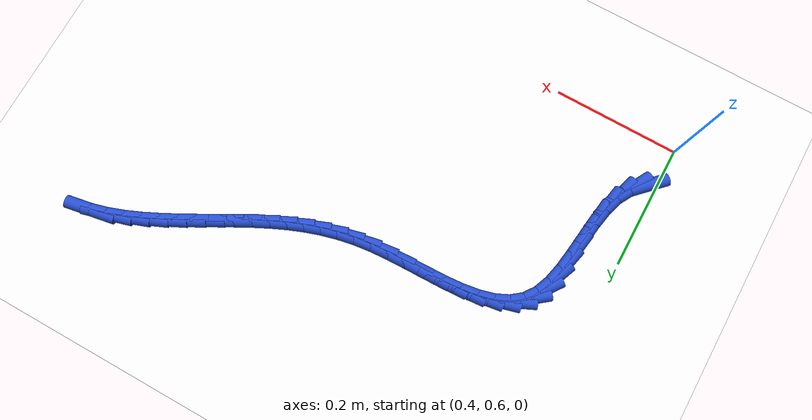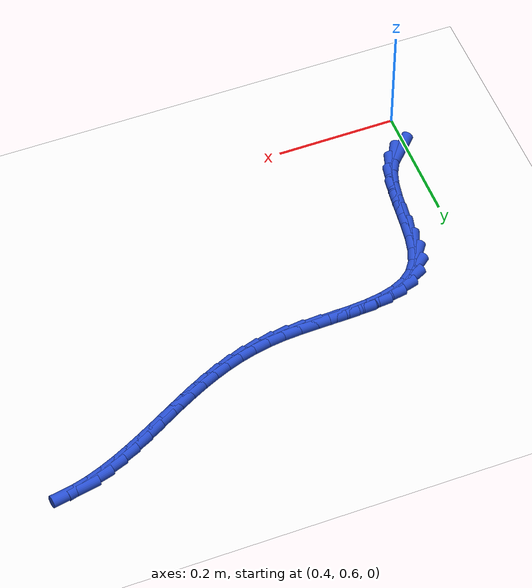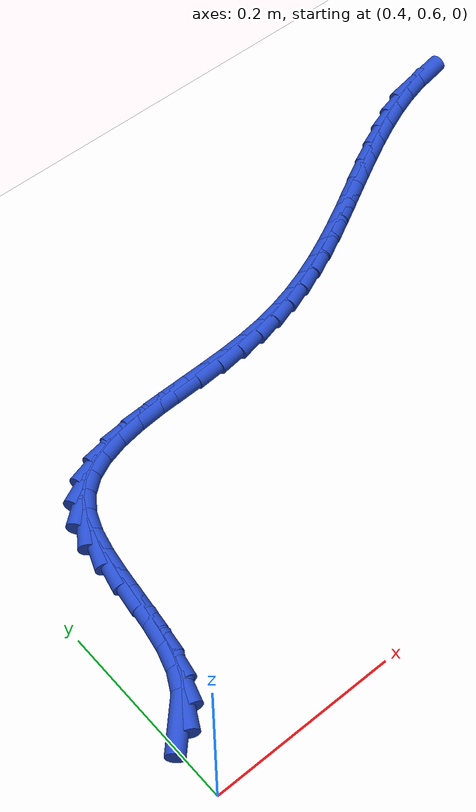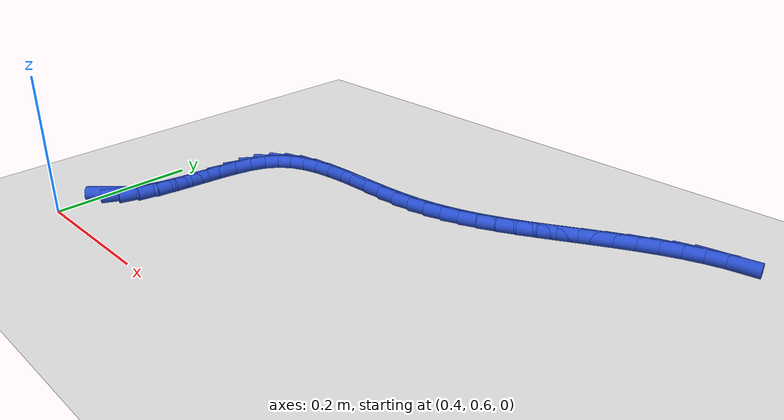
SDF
<sdf version="1.6">
 <world name="default">
  <model name="ground_plane">
   <static>1</static>
   <link name="link">
    <collision name="collision">
     <geometry><plane><normal>0 0 1</normal><size>100 100</size></plane></geometry>
     <surface><friction><ode><mu>100</mu><mu2>50</mu2></ode></friction></surface>
    </collision>
    <visual name="visual">
     <cast_shadows>0</cast_shadows>
     <geometry><plane><normal>0 0 1</normal><size>100 100</size></plane></geometry>
     <material>
      <script><uri>file://media/materials/scripts/gazebo.material</uri><name>Gazebo/WhiteGlow</name></script>
     </material>
    </visual>
   </link>
  </model>
  <model name="line">
   <link name="link_34">
    <pose>0.4199534080571775 0.6765338613883385 0.01 0 1.57 0.7923177625287058</pose>
    <collision name="collision">
     <geometry><cylinder><radius>0.01</radius><length>0.08</length></cylinder></geometry>
    </collision>
    <visual name="visual">
     <material>
      <script><name>Gazebo/Blue</name><uri>file://media/materials/scripts/gazebo.material</uri></script>
     </material>
     <geometry><cylinder><radius>0.01</radius><length>0.08</length></cylinder></geometry>
    </visual>
   </link>
   <link name="link_35">
    <pose>0.43574919612393337 0.6925497772069762 0.01 0 1.57 1.070897125102758</pose>
    <collision name="collision">
     <geometry><cylinder><radius>0.01</radius><length>0.08</length></cylinder></geometry>
    </collision>
    <visual name="visual">
     <material>
      <script><name>Gazebo/Blue</name><uri>file://media/materials/scripts/gazebo.material</uri></script>
     </material>
     <geometry><cylinder><radius>0.01</radius><length>0.08</length></cylinder></geometry>
    </visual>
   </link>
   <link name="link_36">
    <pose>0.4470509197334005 0.7132424007002299 0.01 0 1.57 1.2662341445706322</pose>
    <collision name="collision">
     <geometry><cylinder><radius>0.01</radius><length>0.08</length></cylinder></geometry>
    </collision>
    <visual name="visual">
     <material>
      <script><name>Gazebo/Blue</name><uri>file://media/materials/scripts/gazebo.material</uri></script>
     </material>
     <geometry><cylinder><radius>0.01</radius><length>0.08</length></cylinder></geometry>
    </visual>
   </link>
   <link name="link_37">
    <pose>0.45473546291214306 0.7376888354469547 0.01 0 1.57 1.3820660804485176</pose>
    <collision name="collision">
     <geometry><cylinder><radius>0.01</radius><length>0.08</length></cylinder></geometry>
    </collision>
    <visual name="visual">
     <material>
      <script><name>Gazebo/Blue</name><uri>file://media/materials/scripts/gazebo.material</uri></script>
     </material>
     <geometry><cylinder><radius>0.01</radius><length>0.08</length></cylinder></geometry>
    </visual>
   </link>
   <link name="link_38">
    <pose>0.45990038074570133 0.7647298029985087 0.01 0 1.57 1.44010782992766</pose>
    <collision name="collision">
     <geometry><cylinder><radius>0.01</radius><length>0.08</length></cylinder></geometry>
    </collision>
    <visual name="visual">
     <material>
      <script><name>Gazebo/Blue</name><uri>file://media/materials/scripts/gazebo.material</uri></script>
     </material>
     <geometry><cylinder><radius>0.01</radius><length>0.08</length></cylinder></geometry>
    </visual>
   </link>
   <link name="link_39">
    <pose>0.4636432283196159 0.7932060249062507 0.01 0 1.57 1.452462349332815</pose>
    <collision name="collision">
     <geometry><cylinder><radius>0.01</radius><length>0.08</length></cylinder></geometry>
    </collision>
    <visual name="visual">
     <material>
      <script><name>Gazebo/Blue</name><uri>file://media/materials/scripts/gazebo.material</uri></script>
     </material>
     <geometry><cylinder><radius>0.01</radius><length>0.08</length></cylinder></geometry>
    </visual>
   </link>
   <link name="link_40">
    <pose>0.4670615607194273 0.8219582227215383 0.01 0 1.57 1.4215190476510389</pose>
    <collision name="collision">
     <geometry><cylinder><radius>0.01</radius><length>0.08</length></cylinder></geometry>
    </collision>
    <visual name="visual">
     <material>
      <script><name>Gazebo/Blue</name><uri>file://media/materials/scripts/gazebo.material</uri></script>
     </material>
     <geometry><cylinder><radius>0.01</radius><length>0.08</length></cylinder></geometry>
    </visual>
   </link>
   <link name="link_41">
    <pose>0.4712529330306759 0.8498271179957307 0.01 0 1.57 1.3402491853394312</pose>
    <collision name="collision">
     <geometry><cylinder><radius>0.01</radius><length>0.08</length></cylinder></geometry>
    </collision>
    <visual name="visual">
     <material>
      <script><name>Gazebo/Blue</name><uri>file://media/materials/scripts/gazebo.material</uri></script>
     </material>
     <geometry><cylinder><radius>0.01</radius><length>0.08</length></cylinder></geometry>
    </visual>
   </link>
   <link name="link_42">
    <pose>0.477314900338902 0.8756534322801854 0.01 0 1.57 1.1910394605796708</pose>
    <collision name="collision">
     <geometry><cylinder><radius>0.01</radius><length>0.08</length></cylinder></geometry>
    </collision>
    <visual name="visual">
     <material>
      <script><name>Gazebo/Blue</name><uri>file://media/materials/scripts/gazebo.material</uri></script>
     </material>
     <geometry><cylinder><radius>0.01</radius><length>0.08</length></cylinder></geometry>
    </visual>
   </link>
   <link name="link_43">
    <pose>0.48634501772964633 0.8982778871262612 0.01 0 1.57 0.9505667504201235</pose>
    <collision name="collision">
     <geometry><cylinder><radius>0.01</radius><length>0.08</length></cylinder></geometry>
    </collision>
    <visual name="visual">
     <material>
      <script><name>Gazebo/Blue</name><uri>file://media/materials/scripts/gazebo.material</uri></script>
     </material>
     <geometry><cylinder><radius>0.01</radius><length>0.08</length></cylinder></geometry>
    </visual>
   </link>
   <link name="link_44">
    <pose>0.49941183105960485 0.9165721958688583 0.01 0 1.57 0.6671425733829582</pose>
    <collision name="collision">
     <geometry><cylinder><radius>0.01</radius><length>0.08</length></cylinder></geometry>
    </collision>
    <visual name="visual">
     <material>
      <script><name>Gazebo/Blue</name><uri>file://media/materials/scripts/gazebo.material</uri></script>
     </material>
     <geometry><cylinder><radius>0.01</radius><length>0.08</length></cylinder></geometry>
    </visual>
   </link>
   <link name="link_45">
    <pose>0.5167882400707897 0.9302580941683474 0.01 0 1.57 0.43248300576456994</pose>
    <collision name="collision">
     <geometry><cylinder><radius>0.01</radius><length>0.08</length></cylinder></geometry>
    </collision>
    <visual name="visual">
     <material>
      <script><name>Gazebo/Blue</name><uri>file://media/materials/scripts/gazebo.material</uri></script>
     </material>
     <geometry><cylinder><radius>0.01</radius><length>0.08</length></cylinder></geometry>
    </visual>
   </link>
   <link name="link_46">
    <pose>0.5378728412767588 0.9399913727250232 0.01 0 1.57 0.26234919527058076</pose>
    <collision name="collision">
     <geometry><cylinder><radius>0.01</radius><length>0.08</length></cylinder></geometry>
    </collision>
    <visual name="visual">
     <material>
      <script><name>Gazebo/Blue</name><uri>file://media/materials/scripts/gazebo.material</uri></script>
     </material>
     <geometry><cylinder><radius>0.01</radius><length>0.08</length></cylinder></geometry>
    </visual>
   </link>
   <link name="link_47">
    <pose>0.5620194466986577 0.9464756674026049 0.01 0 1.57 0.14721734777549855</pose>
    <collision name="collision">
     <geometry><cylinder><radius>0.01</radius><length>0.08</length></cylinder></geometry>
    </collision>
    <visual name="visual">
     <material>
      <script><name>Gazebo/Blue</name><uri>file://media/materials/scripts/gazebo.material</uri></script>
     </material>
     <geometry><cylinder><radius>0.01</radius><length>0.08</length></cylinder></geometry>
    </visual>
   </link>
   <link name="link_48">
    <pose>0.5885818683576327 0.9504146140648114 0.01 0 1.57 0.07388863454450137</pose>
    <collision name="collision">
     <geometry><cylinder><radius>0.01</radius><length>0.08</length></cylinder></geometry>
    </collision>
    <visual name="visual">
     <material>
      <script><name>Gazebo/Blue</name><uri>file://media/materials/scripts/gazebo.material</uri></script>
     </material>
     <geometry><cylinder><radius>0.01</radius><length>0.08</length></cylinder></geometry>
    </visual>
   </link>
   <link name="link_49">
    <pose>0.6169139182748291 0.9525118485753619 0.01 0 1.57 0.0325514672555364</pose>
    <collision name="collision">
     <geometry><cylinder><radius>0.01</radius><length>0.08</length></cylinder></geometry>
    </collision>
    <visual name="visual">
     <material>
      <script><name>Gazebo/Blue</name><uri>file://media/materials/scripts/gazebo.material</uri></script>
     </material>
     <geometry><cylinder><radius>0.01</radius><length>0.08</length></cylinder></geometry>
    </visual>
   </link>
   <link name="link_50">
    <pose>0.6463694084713933 0.9534710067979758 0.01 0 1.57 0.017528098544785757</pose>
    <collision name="collision">
     <geometry><cylinder><radius>0.01</radius><length>0.08</length></cylinder></geometry>
    </collision>
    <visual name="visual">
     <material>
      <script><name>Gazebo/Blue</name><uri>file://media/materials/scripts/gazebo.material</uri></script>
     </material>
     <geometry><cylinder><radius>0.01</radius><length>0.08</length></cylinder></geometry>
    </visual>
   </link>
   <link name="link_51">
    <pose>0.6763021509684706 0.953995724596372 0.01 0 1.57 0.026667456747574873</pose>
    <collision name="collision">
     <geometry><cylinder><radius>0.01</radius><length>0.08</length></cylinder></geometry>
    </collision>
    <visual name="visual">
     <material>
      <script><name>Gazebo/Blue</name><uri>file://media/materials/scripts/gazebo.material</uri></script>
     </material>
     <geometry><cylinder><radius>0.01</radius><length>0.08</length></cylinder></geometry>
    </visual>
   </link>
   <link name="link_52">
    <pose>0.7060659577872074 0.95478963783427 0.01 0 1.57 0.06095461739545288</pose>
    <collision name="collision">
     <geometry><cylinder><radius>0.01</radius><length>0.08</length></cylinder></geometry>
    </collision>
    <visual name="visual">
     <material>
      <script><name>Gazebo/Blue</name><uri>file://media/materials/scripts/gazebo.material</uri></script>
     </material>
     <geometry><cylinder><radius>0.01</radius><length>0.08</length></cylinder></geometry>
    </visual>
   </link>
   <link name="link_53">
    <pose>0.7350146409487491 0.9565563823753883 0.01 0 1.57 0.1211702622609101</pose>
    <collision name="collision">
     <geometry><cylinder><radius>0.01</radius><length>0.08</length></cylinder></geometry>
    </collision>
    <visual name="visual">
     <material>
      <script><name>Gazebo/Blue</name><uri>file://media/materials/scripts/gazebo.material</uri></script>
     </material>
     <geometry><cylinder><radius>0.01</radius><length>0.08</length></cylinder></geometry>
    </visual>
   </link>
   <link name="link_54">
    <pose>0.762596069342792 0.9599148841665189 0.01 0 1.57 0.1895481863788539</pose>
    <collision name="collision">
     <geometry><cylinder><radius>0.01</radius><length>0.08</length></cylinder></geometry>
    </collision>
    <visual name="visual">
     <material>
      <script><name>Gazebo/Blue</name><uri>file://media/materials/scripts/gazebo.material</uri></script>
     </material>
     <geometry><cylinder><radius>0.01</radius><length>0.08</length></cylinder></geometry>
    </visual>
   </link>
   <link name="link_55">
    <pose>0.7888493262262767 0.9649516070311946 0.01 0 1.57 0.2560312832328813</pose>
    <collision name="collision">
     <geometry><cylinder><radius>0.01</radius><length>0.08</length></cylinder></geometry>
    </collision>
    <visual name="visual">
     <material>
      <script><name>Gazebo/Blue</name><uri>file://media/materials/scripts/gazebo.material</uri></script>
     </material>
     <geometry><cylinder><radius>0.01</radius><length>0.08</length></cylinder></geometry>
    </visual>
   </link>
   <link name="link_56">
    <pose>0.8140426557753861 0.9715466268626329 0.01 0 1.57 0.3180168319167051</pose>
    <collision name="collision">
     <geometry><cylinder><radius>0.01</radius><length>0.08</length></cylinder></geometry>
    </collision>
    <visual name="visual">
     <material>
      <script><name>Gazebo/Blue</name><uri>file://media/materials/scripts/gazebo.material</uri></script>
     </material>
     <geometry><cylinder><radius>0.01</radius><length>0.08</length></cylinder></geometry>
    </visual>
   </link>
   <link name="link_57">
    <pose>0.8384448041861334 0.9795795674227095 0.01 0 1.57 0.3732146522069759</pose>
    <collision name="collision">
     <geometry><cylinder><radius>0.01</radius><length>0.08</length></cylinder></geometry>
    </collision>
    <visual name="visual">
     <material>
      <script><name>Gazebo/Blue</name><uri>file://media/materials/scripts/gazebo.material</uri></script>
     </material>
     <geometry><cylinder><radius>0.01</radius><length>0.08</length></cylinder></geometry>
    </visual>
   </link>
   <link name="link_58">
    <pose>0.8623245176545319 0.9889300524733017 0.01 0 1.57 0.41989128030626427</pose>
    <collision name="collision">
     <geometry><cylinder><radius>0.01</radius><length>0.08</length></cylinder></geometry>
    </collision>
    <visual name="visual">
     <material>
      <script><name>Gazebo/Blue</name><uri>file://media/materials/scripts/gazebo.material</uri></script>
     </material>
     <geometry><cylinder><radius>0.01</radius><length>0.08</length></cylinder></geometry>
    </visual>
   </link>
   <link name="link_59">
    <pose>0.8859505423765944 0.9994777057762855 0.01 0 1.57 0.45698985455259017</pose>
    <collision name="collision">
     <geometry><cylinder><radius>0.01</radius><length>0.08</length></cylinder></geometry>
    </collision>
    <visual name="visual">
     <material>
      <script><name>Gazebo/Blue</name><uri>file://media/materials/scripts/gazebo.material</uri></script>
     </material>
     <geometry><cylinder><radius>0.01</radius><length>0.08</length></cylinder></geometry>
    </visual>
   </link>
   <link name="link_60">
    <pose>0.9095916245483342 1.0111021510935374 0.01 0 1.57 0.48405005360047765</pose>
    <collision name="collision">
     <geometry><cylinder><radius>0.01</radius><length>0.08</length></cylinder></geometry>
    </collision>
    <visual name="visual">
     <material>
      <script><name>Gazebo/Blue</name><uri>file://media/materials/scripts/gazebo.material</uri></script>
     </material>
     <geometry><cylinder><radius>0.01</radius><length>0.08</length></cylinder></geometry>
    </visual>
   </link>
   <link name="link_61">
    <pose>0.9335106483913236 1.0236780445863247 0.01 0 1.57 0.49978914174198985</pose>
    <collision name="collision">
     <geometry><cylinder><radius>0.01</radius><length>0.08</length></cylinder></geometry>
    </collision>
    <visual name="visual">
     <material>
      <script><name>Gazebo/Blue</name><uri>file://media/materials/scripts/gazebo.material</uri></script>
     </material>
     <geometry><cylinder><radius>0.01</radius><length>0.08</length></cylinder></geometry>
    </visual>
   </link>
   <link name="link_62">
    <pose>0.9578171564107384 1.0369500963693181 0.01 0 1.57 0.5035309886041415</pose>
    <collision name="collision">
     <geometry><cylinder><radius>0.01</radius><length>0.08</length></cylinder></geometry>
    </collision>
    <visual name="visual">
     <material>
      <script><name>Gazebo/Blue</name><uri>file://media/materials/scripts/gazebo.material</uri></script>
     </material>
     <geometry><cylinder><radius>0.01</radius><length>0.08</length></cylinder></geometry>
    </visual>
   </link>
   <link name="link_63">
    <pose>0.9824562974679931 1.0505237047991474 0.01 0 1.57 0.49584609794629053</pose>
    <collision name="collision">
     <geometry><cylinder><radius>0.01</radius><length>0.08</length></cylinder></geometry>
    </collision>
    <visual name="visual">
     <material>
      <script><name>Gazebo/Blue</name><uri>file://media/materials/scripts/gazebo.material</uri></script>
     </material>
     <geometry><cylinder><radius>0.01</radius><length>0.08</length></cylinder></geometry>
    </visual>
   </link>
   <link name="link_64">
    <pose>1.0073651447079515 1.0639974246450357 0.01 0 1.57 0.4767654918591282</pose>
    <collision name="collision">
     <geometry><cylinder><radius>0.01</radius><length>0.08</length></cylinder></geometry>
    </collision>
    <visual name="visual">
     <material>
      <script><name>Gazebo/Blue</name><uri>file://media/materials/scripts/gazebo.material</uri></script>
     </material>
     <geometry><cylinder><radius>0.01</radius><length>0.08</length></cylinder></geometry>
    </visual>
   </link>
   <link name="link_65">
    <pose>1.0324807712754778 1.0769698106762067 0.01 0 1.57 0.4457506424002705</pose>
    <collision name="collision">
     <geometry><cylinder><radius>0.01</radius><length>0.08</length></cylinder></geometry>
    </collision>
    <visual name="visual">
     <material>
      <script><name>Gazebo/Blue</name><uri>file://media/materials/scripts/gazebo.material</uri></script>
     </material>
     <geometry><cylinder><radius>0.01</radius><length>0.08</length></cylinder></geometry>
    </visual>
   </link>
   <link name="link_66">
    <pose>1.057740250315437 1.0890394176618845 0.01 0 1.57 0.401727268846649</pose>
    <collision name="collision">
     <geometry><cylinder><radius>0.01</radius><length>0.08</length></cylinder></geometry>
    </collision>
    <visual name="visual">
     <material>
      <script><name>Gazebo/Blue</name><uri>file://media/materials/scripts/gazebo.material</uri></script>
     </material>
     <geometry><cylinder><radius>0.01</radius><length>0.08</length></cylinder></geometry>
    </visual>
   </link>
   <link name="link_67">
    <pose>1.0830806549726932 1.099804800371293 0.01 0 1.57 0.3431337729338121</pose>
    <collision name="collision">
     <geometry><cylinder><radius>0.01</radius><length>0.08</length></cylinder></geometry>
    </collision>
    <visual name="visual">
     <material>
      <script><name>Gazebo/Blue</name><uri>file://media/materials/scripts/gazebo.material</uri></script>
     </material>
     <geometry><cylinder><radius>0.01</radius><length>0.08</length></cylinder></geometry>
    </visual>
   </link>
   <link name="link_68">
    <pose>1.1084390583921109 1.1088645135736555 0.01 0 1.57 0.26805006358286426</pose>
    <collision name="collision">
     <geometry><cylinder><radius>0.01</radius><length>0.08</length></cylinder></geometry>
    </collision>
    <visual name="visual">
     <material>
      <script><name>Gazebo/Blue</name><uri>file://media/materials/scripts/gazebo.material</uri></script>
     </material>
     <geometry><cylinder><radius>0.01</radius><length>0.08</length></cylinder></geometry>
    </visual>
   </link>
   <link name="link_69">
    <pose>1.1337525337185546 1.1158171120381963 0.01 0 1.57 0.1745178250083528</pose>
    <collision name="collision">
     <geometry><cylinder><radius>0.01</radius><length>0.08</length></cylinder></geometry>
    </collision>
    <visual name="visual">
     <material>
      <script><name>Gazebo/Blue</name><uri>file://media/materials/scripts/gazebo.material</uri></script>
     </material>
     <geometry><cylinder><radius>0.01</radius><length>0.08</length></cylinder></geometry>
    </visual>
   </link>
  </model>
 </world>
</sdf>
